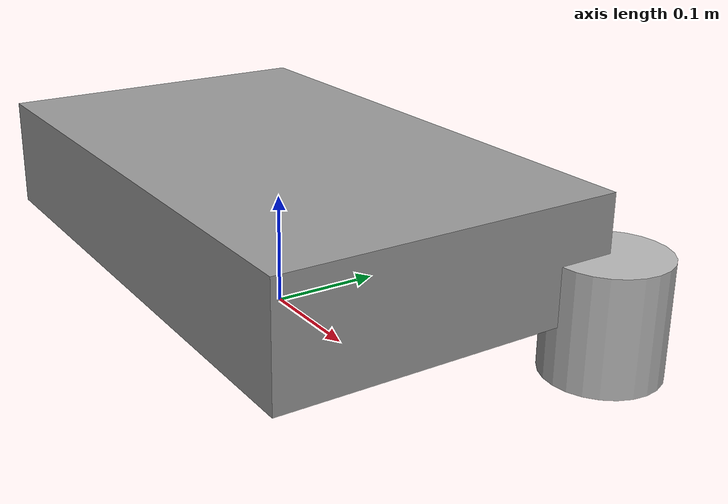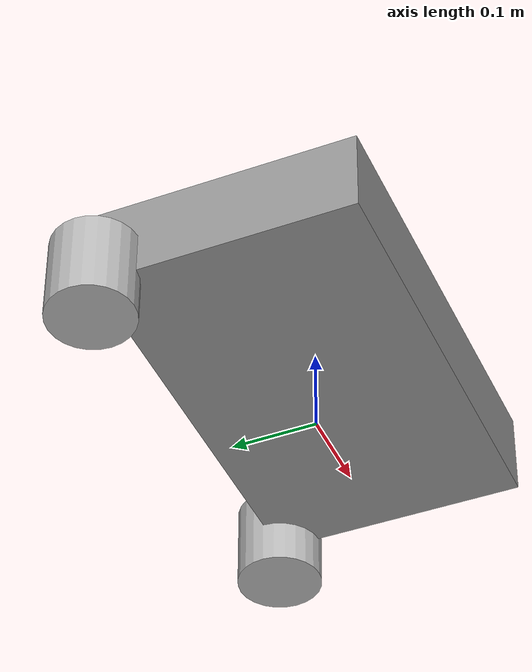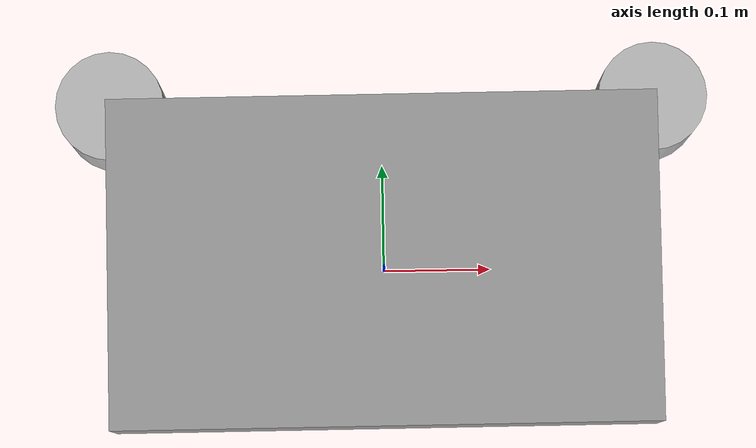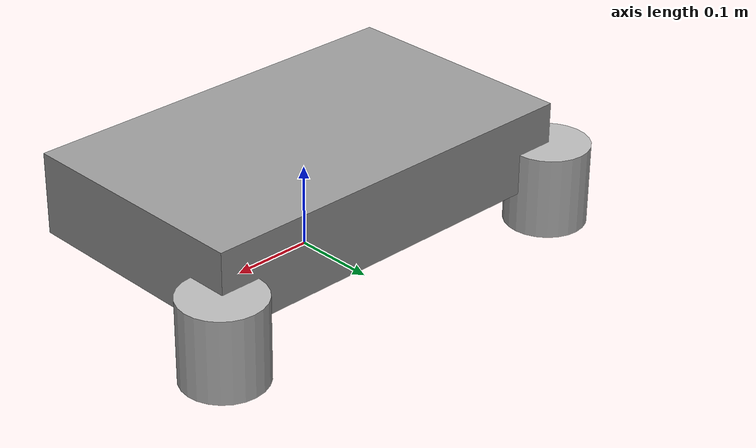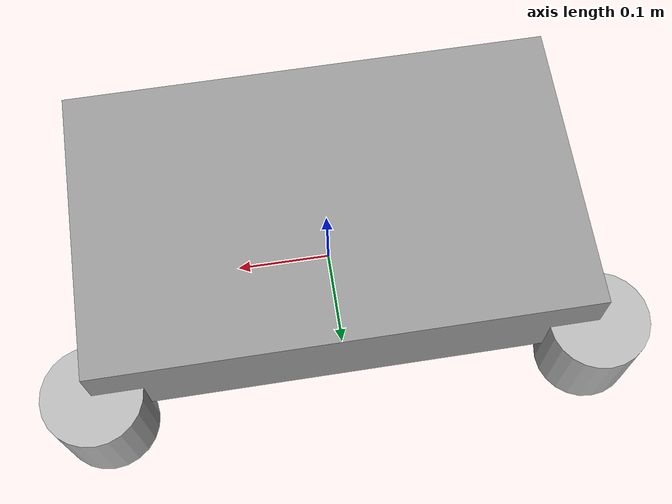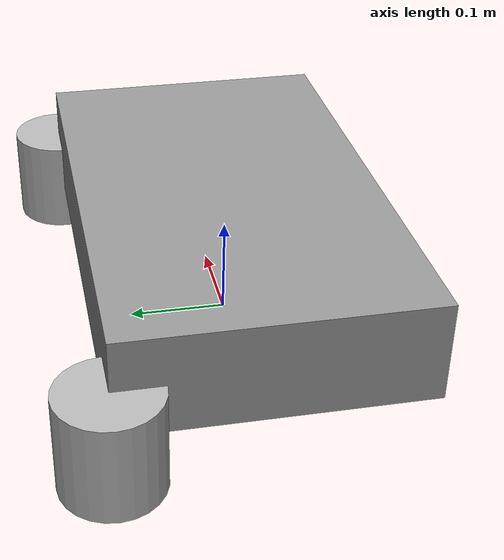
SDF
<?xml version='1.0'?>
<sdf version='1.6'>
  <model name='camera_robot'>
    <static>false</static>
    <link name='chassis'>
      <pose>0 0 0.1 0 0 0</pose>
      <collision name='collision'>
        <geometry>
          <box>
            <size>0.5 0.3 0.1</size>
          </box>
        </geometry>
      </collision>
      <visual name='visual'>
        <geometry>
          <box>
            <size>0.5 0.3 0.1</size>
          </box>
        </geometry>
        <material>
          <script>
            <uri>file://media/materials/scripts/gazebo.material</uri>
            <name>Gazebo/Gray</name>
          </script>
        </material>
      </visual>
    </link>

    <link name='wheel_left'>
      <pose>0.25 0.15 0.05 0 0 0</pose>
      <collision name='collision'>
        <geometry>
          <cylinder>
            <radius>0.05</radius>
            <length>0.1</length>
          </cylinder>
        </geometry>
      </collision>
      <visual name='visual'>
        <geometry>
          <cylinder>
            <radius>0.05</radius>
            <length>0.1</length>
          </cylinder>
        </geometry>
      </visual>
    </link>

    <link name='wheel_right'>
      <pose>-0.25 0.15 0.05 0 0 0</pose>
      <collision name='collision'>
        <geometry>
          <cylinder>
            <radius>0.05</radius>
            <length>0.1</length>
          </cylinder>
        </geometry>
      </collision>
      <visual name='visual'>
        <geometry>
          <cylinder>
            <radius>0.05</radius>
            <length>0.1</length>
          </cylinder>
        </geometry>
      </visual>
    </link>

    <joint name='joint_left' type='revolute'>
      <parent>chassis</parent>
      <child>wheel_left</child>
      <axis>
        <xyz>0 0 1</xyz>
        <limit>
          <lower>-10</lower>
          <upper>10</upper>
        </limit>
      </axis>
    </joint>

    <joint name='joint_right' type='revolute'>
      <parent>chassis</parent>
      <child>wheel_right</child>
      <axis>
        <xyz>0 0 1</xyz>
        <limit>
          <lower>-10</lower>
          <upper>10</upper>
        </limit>
      </axis>
    </joint>

    <link name='camera_link'>
      <pose>0 0 0.15 0 0 0</pose>
      <sensor name='camera' type='camera'>
        <pose>0 0 0 0 0 0</pose>
        <camera>
          <horizontal_fov>1.047</horizontal_fov>
          <image>
            <width>640</width>
            <height>480</height>
            <format>R8G8B8</format>
          </image>
          <clip>
            <near>0.1</near>
            <far>100</far>
          </clip>
        </camera>
        <plugin name='camera_plugin' filename='libgazebo_ros_camera.so'>
          <ros>
            <namespace>/</namespace>
          </ros>
          <cameraName>camera</cameraName>
          <imageTopicName>/camera/image_raw</imageTopicName>
          <imageWidth>640</imageWidth>
          <imageHeight>480</imageHeight>
          <updateRate>30.0</updateRate>
        </plugin>
      </sensor>
    </link>

    <plugin name='diff_drive' filename='libgazebo_ros_diff_drive.so'>
      <ros>
        <namespace>/</namespace>
      </ros>
      <left_joint>joint_left</left_joint>
      <right_joint>joint_right</right_joint>
      <wheel_separation>0.5</wheel_separation>
      <wheel_radius>0.05</wheel_radius>
      <cmd_vel_topic>/cmd_vel</cmd_vel_topic>
      <odom_topic>/odom</odom_topic>
      <publish_odom>true</publish_odom>
      <publish_odom_tf>true</publish_odom_tf>
      <update_rate>100</update_rate>
    </plugin>
  </model>
</sdf>
